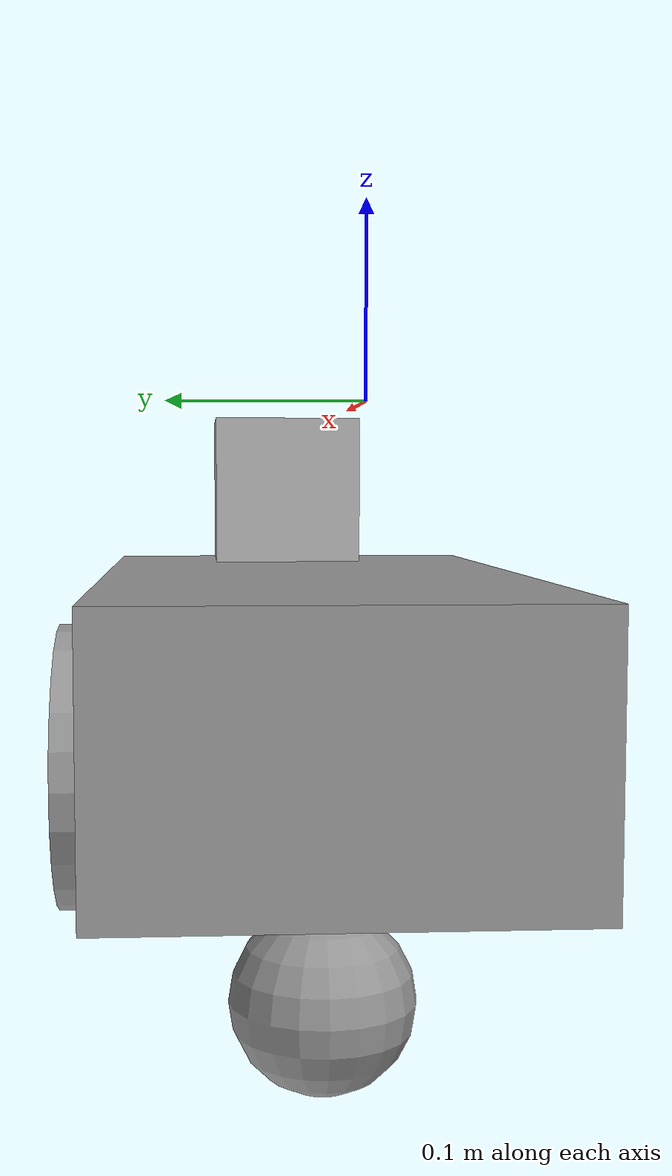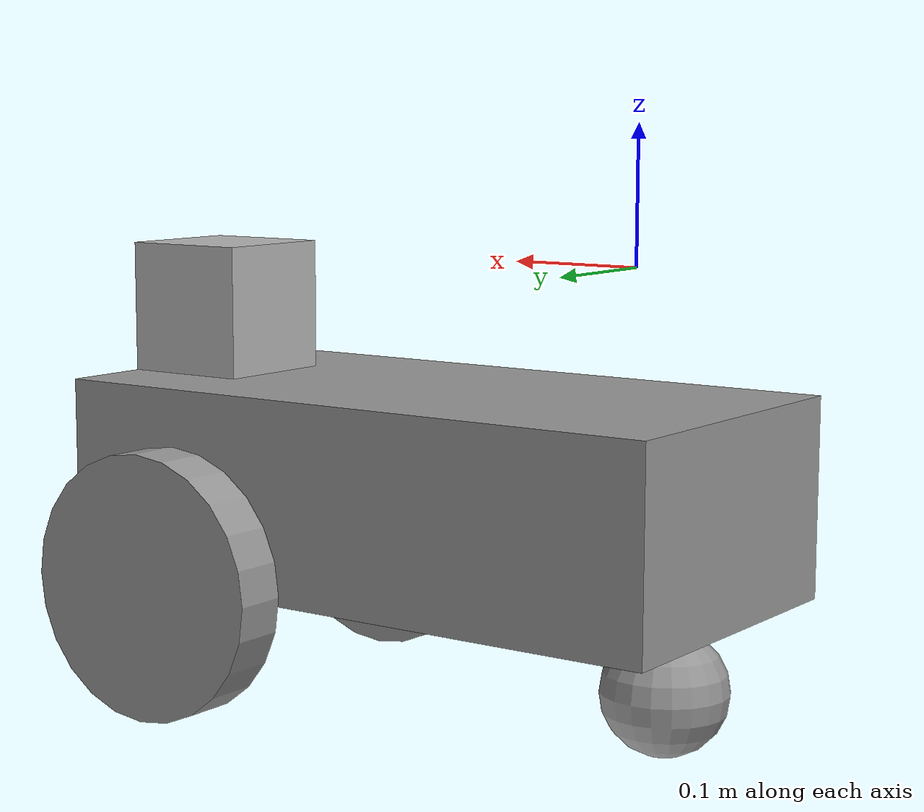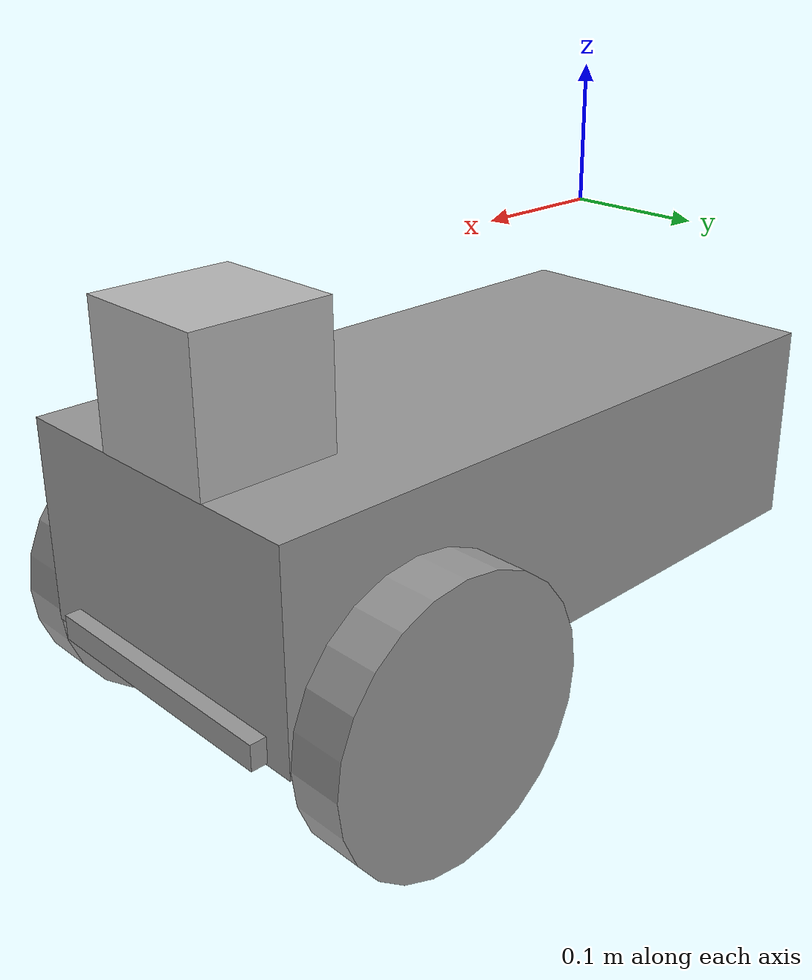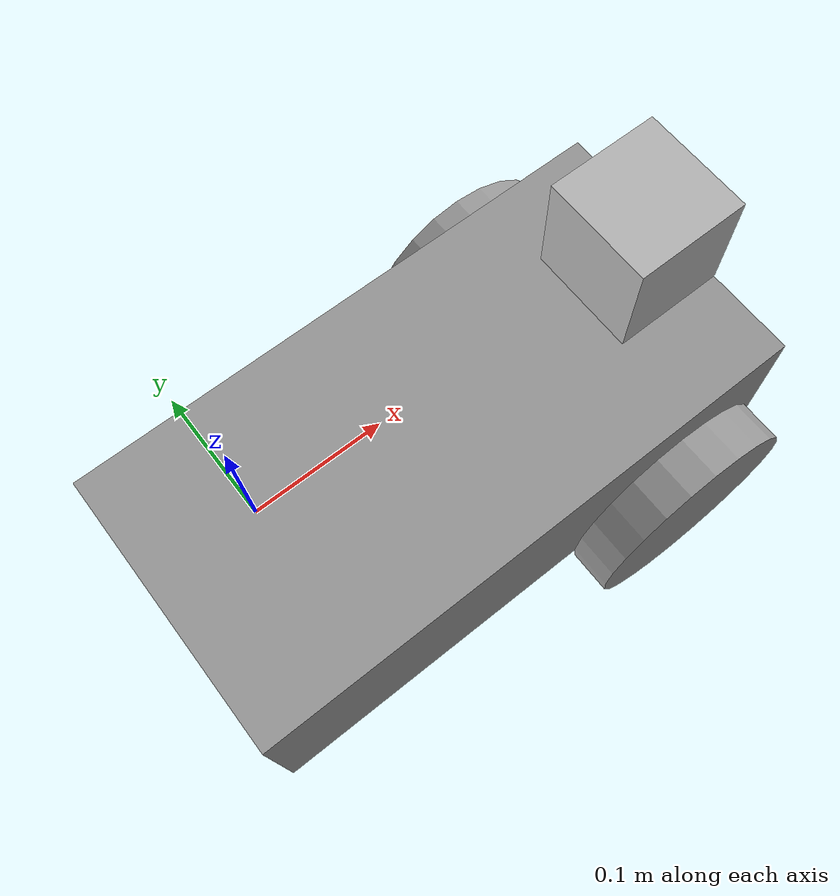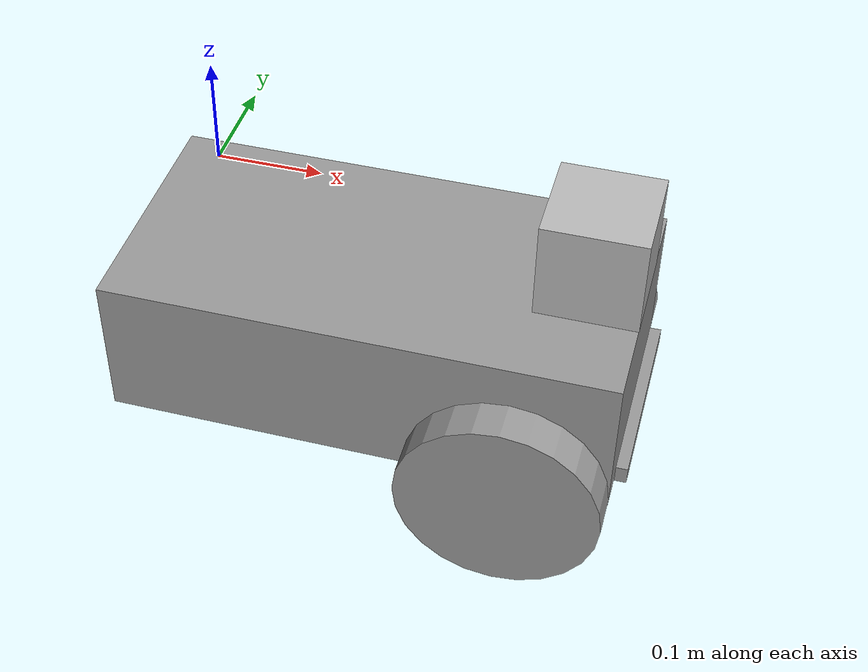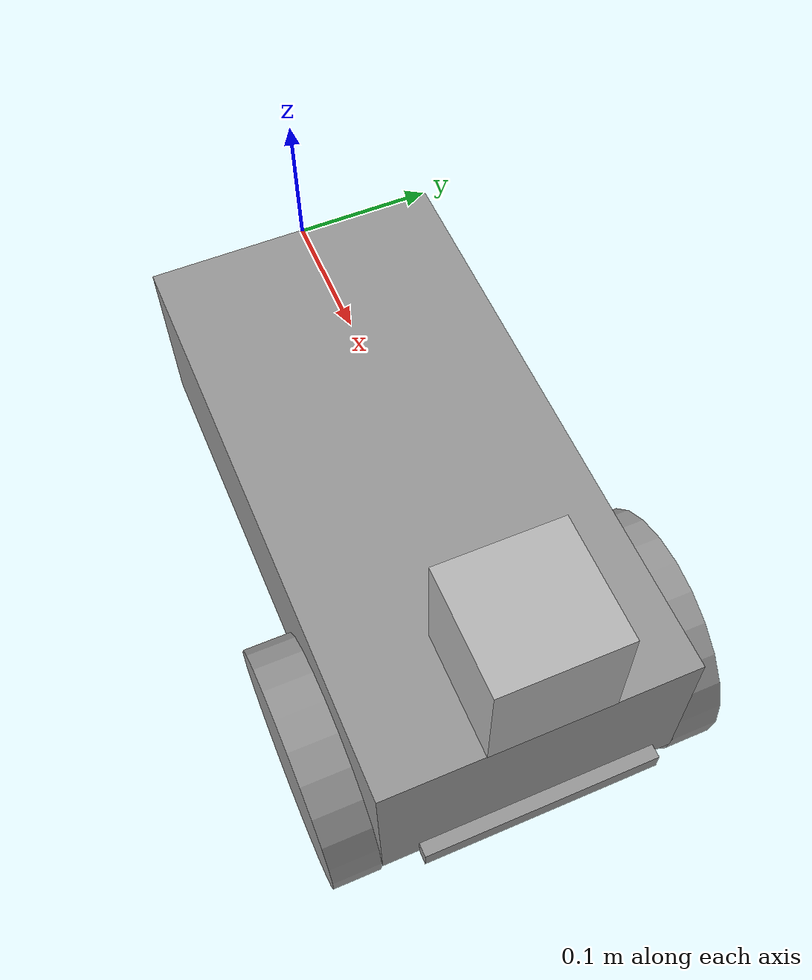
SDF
<?xml version='1.0'?>
<sdf version='1.7'>
  <model name='robot_001'>
    <link name='caster'>
      <inertial>
        <mass>1.0</mass>
        <inertia>
          <ixx>9e-07</ixx>
          <ixy>0</ixy>
          <ixz>0</ixz>
          <iyy>9e-07</iyy>
          <iyz>0</iyz>
          <izz>9e-07</izz>
        </inertia>
        <pose>0 0 0 0 -0 0</pose>
      </inertial>
      <pose>-0.042097 0.024615 -0.291624 0 -0 0</pose>
      <gravity>1</gravity>
      <self_collide>0</self_collide>
      <kinematic>0</kinematic>
      <enable_wind>0</enable_wind>
      <visual name='visual'>
        <pose>0 0 0 0 -0 0</pose>
        <geometry>
          <sphere>
            <radius>0.046</radius>
          </sphere>
        </geometry>
        <material>
          <lighting>1</lighting>
          <script>
            <uri>file://media/materials/scripts/gazebo.material</uri>
            <name>Gazebo/Grey</name>
          </script>
          <shader type='pixel'>
            <normal_map>__default__</normal_map>
          </shader>
          <ambient>0.3 0.3 0.3 1</ambient>
          <diffuse>0.7 0.7 0.7 1</diffuse>
          <specular>0.01 0.01 0.01 1</specular>
          <emissive>0 0 0 1</emissive>
        </material>
        <transparency>0</transparency>
        <cast_shadows>1</cast_shadows>
      </visual>
      <collision name='collision'>
        <laser_retro>0</laser_retro>
        <max_contacts>10</max_contacts>
        <pose>0 0 0 0 -0 0</pose>
        <geometry>
          <sphere>
            <radius>0.046</radius>
          </sphere>
        </geometry>
        <surface>
          <friction>
            <ode>
              <mu>1</mu>
              <mu2>1</mu2>
              <fdir1>0 0 0</fdir1>
              <slip1>0</slip1>
              <slip2>0</slip2>
            </ode>
            <torsional>
              <coefficient>1</coefficient>
              <patch_radius>0</patch_radius>
              <surface_radius>0</surface_radius>
              <use_patch_radius>1</use_patch_radius>
              <ode>
                <slip>0</slip>
              </ode>
            </torsional>
          </friction>
          <bounce>
            <restitution_coefficient>0</restitution_coefficient>
            <threshold>1e+06</threshold>
          </bounce>
          <contact>
            <collide_without_contact>0</collide_without_contact>
            <collide_without_contact_bitmask>1</collide_without_contact_bitmask>
            <collide_bitmask>1</collide_bitmask>
            <ode>
              <soft_cfm>0</soft_cfm>
              <soft_erp>0.2</soft_erp>
              <kp>1e+13</kp>
              <kd>1</kd>
              <max_vel>0.01</max_vel>
              <min_depth>0</min_depth>
            </ode>
            <bullet>
              <split_impulse>1</split_impulse>
              <split_impulse_penetration_threshold>-0.01</split_impulse_penetration_threshold>
              <soft_cfm>0</soft_cfm>
              <soft_erp>0.2</soft_erp>
              <kp>1e+13</kp>
              <kd>1</kd>
            </bullet>
          </contact>
        </surface>
      </collision>
    </link>
    <link name='chassis'>
      <inertial>
        <mass>1.1509</mass>
        <inertia>
          <ixx>0.15021</ixx>
          <ixy>0</ixy>
          <ixz>0</ixz>
          <iyy>0.279296</iyy>
          <iyz>0</iyz>
          <izz>0.286024</izz>
        </inertia>
        <pose>0 0 0 0 -0 0</pose>
      </inertial>
      <pose>0.159913 0.014865 -0.17 0 -0 0</pose>
      <gravity>1</gravity>
      <self_collide>0</self_collide>
      <kinematic>0</kinematic>
      <enable_wind>0</enable_wind>
      <visual name='visual'>
        <pose>0 0 0 0 -0 0</pose>
        <geometry>
          <box>
            <size>0.5 0.25 0.15</size>
          </box>
        </geometry>
        <material>
          <lighting>1</lighting>
          <script>
            <uri>file://media/materials/scripts/gazebo.material</uri>
            <name>Gazebo/Grey</name>
          </script>
          <shader type='pixel'>
            <normal_map>__default__</normal_map>
          </shader>
          <ambient>0.3 0.3 0.3 1</ambient>
          <diffuse>0.7 0.7 0.7 1</diffuse>
          <specular>0.01 0.01 0.01 1</specular>
          <emissive>0 0 0 1</emissive>
        </material>
        <transparency>0</transparency>
        <cast_shadows>1</cast_shadows>
      </visual>
      <collision name='collision'>
        <laser_retro>0</laser_retro>
        <max_contacts>10</max_contacts>
        <pose>0 0 0 0 -0 0</pose>
        <geometry>
          <box>
            <size>0.5 0.25 0.15</size>
          </box>
        </geometry>
        <surface>
          <friction>
            <ode>
              <mu>1</mu>
              <mu2>1</mu2>
              <fdir1>0 0 0</fdir1>
              <slip1>0</slip1>
              <slip2>0</slip2>
            </ode>
            <torsional>
              <coefficient>1</coefficient>
              <patch_radius>0</patch_radius>
              <surface_radius>0</surface_radius>
              <use_patch_radius>1</use_patch_radius>
              <ode>
                <slip>0</slip>
              </ode>
            </torsional>
          </friction>
          <bounce>
            <restitution_coefficient>0</restitution_coefficient>
            <threshold>1e+06</threshold>
          </bounce>
          <contact>
            <collide_without_contact>0</collide_without_contact>
            <collide_without_contact_bitmask>1</collide_without_contact_bitmask>
            <collide_bitmask>1</collide_bitmask>
            <ode>
              <soft_cfm>0</soft_cfm>
              <soft_erp>0.2</soft_erp>
              <kp>1e+13</kp>
              <kd>1</kd>
              <max_vel>0.01</max_vel>
              <min_depth>0</min_depth>
            </ode>
            <bullet>
              <split_impulse>1</split_impulse>
              <split_impulse_penetration_threshold>-0.01</split_impulse_penetration_threshold>
              <soft_cfm>0</soft_cfm>
              <soft_erp>0.2</soft_erp>
              <kp>1e+13</kp>
              <kd>1</kd>
            </bullet>
          </contact>
        </surface>
      </collision>
    </link>
    <link name='bumper'>
      <inertial>
        <mass>4.23654e-05</mass>
        <inertia>
          <ixx>1.42262e-07</ixx>
          <ixy>0</ixy>
          <ixz>0</ixz>
          <iyy>1.65068e-09</iyy>
          <iyz>0</iyz>
          <izz>1.41559e-07</izz>
        </inertia>
        <pose>0 0 0 0 -0 0</pose>
      </inertial>
      <pose>0.416264 0.020149 -0.233594 2.6e-05 0.000118 0</pose>
      <visual name='visual'>
        <pose>0 0 0 0 -0 0</pose>
        <geometry>
          <box>
            <size>0.011586 0.199906 0.018257</size>
          </box>
        </geometry>
        <material>
          <lighting>1</lighting>
          <script>
            <uri>file://media/materials/scripts/gazebo.material</uri>
            <name>Gazebo/Grey</name>
          </script>
          <shader type='pixel'/>
          <emissive>0 0 0 1</emissive>
        </material>
        <transparency>0</transparency>
        <cast_shadows>1</cast_shadows>
      </visual>
      <collision name='collision'>
        <laser_retro>0</laser_retro>
        <max_contacts>10</max_contacts>
        <pose>0 0 0 0 -0 0</pose>
        <geometry>
          <box>
            <size>0.011586 0.199906 0.018257</size>
          </box>
        </geometry>
        <surface>
          <friction>
            <ode>
              <mu>1</mu>
              <mu2>1</mu2>
              <fdir1>0 0 0</fdir1>
              <slip1>0</slip1>
              <slip2>0</slip2>
            </ode>
            <torsional>
              <coefficient>1</coefficient>
              <patch_radius>0</patch_radius>
              <surface_radius>0</surface_radius>
              <use_patch_radius>1</use_patch_radius>
              <ode>
                <slip>0</slip>
              </ode>
            </torsional>
          </friction>
          <bounce>
            <restitution_coefficient>0</restitution_coefficient>
            <threshold>1e+06</threshold>
          </bounce>
          <contact>
            <collide_without_contact>0</collide_without_contact>
            <collide_without_contact_bitmask>1</collide_without_contact_bitmask>
            <collide_bitmask>1</collide_bitmask>
            <ode>
              <soft_cfm>0</soft_cfm>
              <soft_erp>0.2</soft_erp>
              <kp>1e+13</kp>
              <kd>1</kd>
              <max_vel>0.01</max_vel>
              <min_depth>0</min_depth>
            </ode>
            <bullet>
              <split_impulse>1</split_impulse>
              <split_impulse_penetration_threshold>-0.01</split_impulse_penetration_threshold>
              <soft_cfm>0</soft_cfm>
              <soft_erp>0.2</soft_erp>
              <kp>1e+13</kp>
              <kd>1</kd>
            </bullet>
          </contact>
        </surface>
      </collision>
    </link>
    <link name='wheel_left'>
      <inertial>
        <mass>0.5</mass>
        <inertia>
          <ixx>0.00044912</ixx>
          <ixy>0</ixy>
          <ixz>0</ixz>
          <iyy>0.00044912</iyy>
          <iyz>0</iyz>
          <izz>0.00087145</izz>
        </inertia>
        <pose>0 0 0 0 -0 0</pose>
      </inertial>
      <pose>0.310002 0.160674 -0.237998 -1.5708 -0 3e-06</pose>
      <gravity>1</gravity>
      <self_collide>0</self_collide>
      <kinematic>0</kinematic>
      <enable_wind>0</enable_wind>
      <visual name='visual'>
        <pose>0 0 0 0 -0 0</pose>
        <geometry>
          <cylinder>
            <radius>0.1</radius>
            <length>0.04</length>
          </cylinder>
        </geometry>
        <material>
          <lighting>1</lighting>
          <script>
            <uri>file://media/materials/scripts/gazebo.material</uri>
            <name>Gazebo/Grey</name>
          </script>
          <shader type='pixel'>
            <normal_map>__default__</normal_map>
          </shader>
          <ambient>0.3 0.3 0.3 1</ambient>
          <diffuse>0.7 0.7 0.7 1</diffuse>
          <specular>0.01 0.01 0.01 1</specular>
          <emissive>0 0 0 1</emissive>
        </material>
        <transparency>0</transparency>
        <cast_shadows>1</cast_shadows>
      </visual>
      <collision name='collision'>
        <laser_retro>0</laser_retro>
        <max_contacts>10</max_contacts>
        <pose>0 0 0 0 -0 0</pose>
        <geometry>
          <cylinder>
            <radius>0.1</radius>
            <length>0.04</length>
          </cylinder>
        </geometry>
        <surface>
          <friction>
            <ode>
              <mu>1</mu>
              <mu2>1</mu2>
              <fdir1>0 0 0</fdir1>
              <slip1>0</slip1>
              <slip2>0</slip2>
            </ode>
            <torsional>
              <coefficient>1</coefficient>
              <patch_radius>0</patch_radius>
              <surface_radius>0</surface_radius>
              <use_patch_radius>1</use_patch_radius>
              <ode>
                <slip>0</slip>
              </ode>
            </torsional>
          </friction>
          <bounce>
            <restitution_coefficient>0</restitution_coefficient>
            <threshold>1e+06</threshold>
          </bounce>
          <contact>
            <collide_without_contact>0</collide_without_contact>
            <collide_without_contact_bitmask>1</collide_without_contact_bitmask>
            <collide_bitmask>1</collide_bitmask>
            <ode>
              <soft_cfm>0</soft_cfm>
              <soft_erp>0.2</soft_erp>
              <kp>1e+13</kp>
              <kd>1</kd>
              <max_vel>0.01</max_vel>
              <min_depth>0</min_depth>
            </ode>
            <bullet>
              <split_impulse>1</split_impulse>
              <split_impulse_penetration_threshold>-0.01</split_impulse_penetration_threshold>
              <soft_cfm>0</soft_cfm>
              <soft_erp>0.2</soft_erp>
              <kp>1e+13</kp>
              <kd>1</kd>
            </bullet>
          </contact>
        </surface>
      </collision>
    </link>
    <link name='wheel_right'>
      <inertial>
        <mass>0.5</mass>
        <inertia>
          <ixx>9.75e-06</ixx>
          <ixy>0</ixy>
          <ixz>0</ixz>
          <iyy>9.75e-06</iyy>
          <iyz>0</iyz>
          <izz>1.7e-05</izz>
        </inertia>
        <pose>0 0 0 0 -0 0</pose>
      </inertial>
      <pose>0.31 -0.130622 -0.238 -1.5708 -0 3e-06</pose>
      <gravity>1</gravity>
      <self_collide>0</self_collide>
      <kinematic>0</kinematic>
      <enable_wind>0</enable_wind>
      <visual name='visual'>
        <pose>0 0 0 0 -0 0</pose>
        <geometry>
          <cylinder>
            <radius>0.1</radius>
            <length>0.04</length>
          </cylinder>
        </geometry>
        <material>
          <lighting>1</lighting>
          <script>
            <uri>file://media/materials/scripts/gazebo.material</uri>
            <name>Gazebo/Grey</name>
          </script>
          <shader type='pixel'>
            <normal_map>__default__</normal_map>
          </shader>
          <ambient>0.3 0.3 0.3 1</ambient>
          <diffuse>0.7 0.7 0.7 1</diffuse>
          <specular>0.01 0.01 0.01 1</specular>
          <emissive>0 0 0 1</emissive>
        </material>
        <transparency>0</transparency>
        <cast_shadows>1</cast_shadows>
      </visual>
      <collision name='collision'>
        <laser_retro>0</laser_retro>
        <max_contacts>10</max_contacts>
        <pose>0 0 0 0 -0 0</pose>
        <geometry>
          <cylinder>
            <radius>0.1</radius>
            <length>0.04</length>
          </cylinder>
        </geometry>
        <surface>
          <friction>
            <ode>
              <mu>1</mu>
              <mu2>1</mu2>
              <fdir1>0 0 0</fdir1>
              <slip1>0</slip1>
              <slip2>0</slip2>
            </ode>
            <torsional>
              <coefficient>1</coefficient>
              <patch_radius>0</patch_radius>
              <surface_radius>0</surface_radius>
              <use_patch_radius>1</use_patch_radius>
              <ode>
                <slip>0</slip>
              </ode>
            </torsional>
          </friction>
          <bounce>
            <restitution_coefficient>0</restitution_coefficient>
            <threshold>1e+06</threshold>
          </bounce>
          <contact>
            <collide_without_contact>0</collide_without_contact>
            <collide_without_contact_bitmask>1</collide_without_contact_bitmask>
            <collide_bitmask>1</collide_bitmask>
            <ode>
              <soft_cfm>0</soft_cfm>
              <soft_erp>0.2</soft_erp>
              <kp>1e+13</kp>
              <kd>1</kd>
              <max_vel>0.01</max_vel>
              <min_depth>0</min_depth>
            </ode>
            <bullet>
              <split_impulse>1</split_impulse>
              <split_impulse_penetration_threshold>-0.01</split_impulse_penetration_threshold>
              <soft_cfm>0</soft_cfm>
              <soft_erp>0.2</soft_erp>
              <kp>1e+13</kp>
              <kd>1</kd>
            </bullet>
          </contact>
        </surface>
      </collision>
    </link>
    <model name='camera'>
      <pose>0.360322 0.021131 -0.044885 0 -0 0</pose>
      <link name='link'>
        <inertial>
          <mass>0.05</mass>
          <inertia>
            <ixx>0.000166667</ixx>
            <iyy>0.000166667</iyy>
            <izz>0.000166667</izz>
            <ixy>0</ixy>
            <ixz>0</ixz>
            <iyz>0</iyz>
          </inertia>
          <pose>0 0 0 0 -0 0</pose>
        </inertial>
        <collision name='collision'>
          <geometry>
            <box>
              <size>0.1 0.1 0.1</size>
            </box>
          </geometry>
          <max_contacts>10</max_contacts>
          <surface>
            <contact>
              <ode/>
            </contact>
            <bounce/>
            <friction>
              <torsional>
                <ode/>
              </torsional>
              <ode/>
            </friction>
          </surface>
        </collision>
        <visual name='visual'>
          <geometry>
            <box>
              <size>0.1 0.1 0.1</size>
            </box>
          </geometry>
        </visual>
        <sensor name='camera' type='camera'>
          <camera>
            <horizontal_fov>1.5</horizontal_fov>
            <image>
              <width>400</width>
              <height>400</height>
            </image>
            <clip>
              <near>0.01</near>
              <far>100</far>
            </clip>
          </camera>
          <always_on>1</always_on>
          <update_rate>30</update_rate>
          <visualize>1</visualize>
          <plugin name="camera_controller" filename="libgazebo_ros_camera.so">
            <alwaysOn>true</alwaysOn>
            <updateRate>0.0</updateRate>
            <cameraName>forager/camera</cameraName>
            <imageTopicName>image_raw</imageTopicName>
            <cameraInfoTopicName>camera_info</cameraInfoTopicName>
            <frameName>camera_link</frameName>
            <hackBaseline>0.07</hackBaseline>
            <distortionK1>0.0</distortionK1>
            <distortionK2>0.0</distortionK2>
            <distortionK3>0.0</distortionK3>
            <distortionT1>0.0</distortionT1>
            <distortionT2>0.0</distortionT2>
          </plugin>
        </sensor>
        <self_collide>0</self_collide>
        <enable_wind>0</enable_wind>
        <kinematic>0</kinematic>
      </link>
    </model>
    <joint name='wheel_right_joint' type='revolute'>
      <parent>chassis</parent>
      <child>wheel_right</child>
      <pose>0 0 0 0 -0 0</pose>
      <axis>
        <xyz>0 0 1</xyz>
        <limit>
          <lower>-1.79769e+308</lower>
          <upper>1.79769e+308</upper>
          <effort>-1</effort>
          <velocity>-1</velocity>
        </limit>
        <dynamics>
          <spring_reference>0</spring_reference>
          <spring_stiffness>0</spring_stiffness>
          <damping>0</damping>
        </dynamics>
      </axis>
      <physics>
        <ode>
          <limit>
            <cfm>0</cfm>
            <erp>0.2</erp>
          </limit>
          <suspension>
            <cfm>0</cfm>
            <erp>0.2</erp>
          </suspension>
        </ode>
      </physics>
    </joint>
    <joint name='wheel_left_joint' type='revolute'>
      <parent>chassis</parent>
      <child>wheel_left</child>
      <pose>0 0 0 0 -0 0</pose>
      <axis>
        <xyz>0 0 1</xyz>
        <limit>
          <lower>-1.79769e+308</lower>
          <upper>1.79769e+308</upper>
          <effort>-1</effort>
          <velocity>-1</velocity>
        </limit>
        <dynamics>
          <spring_reference>0</spring_reference>
          <spring_stiffness>0</spring_stiffness>
          <damping>0</damping>
        </dynamics>
      </axis>
      <physics>
        <ode>
          <limit>
            <cfm>0</cfm>
            <erp>0.2</erp>
          </limit>
          <suspension>
            <cfm>0</cfm>
            <erp>0.2</erp>
          </suspension>
        </ode>
      </physics>
    </joint>
    <joint name='caster_joint' type='ball'>
      <parent>chassis</parent>
      <child>caster</child>
      <pose>0 0 0 0 -0 0</pose>
      <physics>
        <ode>
          <limit>
            <cfm>0</cfm>
            <erp>0.2</erp>
          </limit>
          <suspension>
            <cfm>0</cfm>
            <erp>0.2</erp>
          </suspension>
        </ode>
      </physics>
    </joint>
    <joint name='camera_joint' type='fixed'>
      <parent>chassis</parent>
      <child>camera::link</child>
      <pose>0 0 0 0 -0 0</pose>
      <physics>
        <ode>
          <limit>
            <cfm>0</cfm>
            <erp>0.2</erp>
          </limit>
          <suspension>
            <cfm>0</cfm>
            <erp>0.2</erp>
          </suspension>
        </ode>
      </physics>
    </joint>
    <joint name='bumper_joint' type='fixed'>
      <parent>chassis</parent>
      <child>bumper</child>
      <pose>0 0 0 0 -0 0</pose>
      <physics>
        <ode>
          <limit>
            <cfm>0</cfm>
            <erp>0.2</erp>
          </limit>
          <suspension>
            <cfm>0</cfm>
            <erp>0.2</erp>
          </suspension>
        </ode>
      </physics>
    </joint>
    <static>0</static>
    <allow_auto_disable>1</allow_auto_disable>
    <plugin name='differential_drive_controller' filename='libgazebo_ros_diff_drive.so'>
      <updateRate>100</updateRate>
      <leftJoint>wheel_left_joint</leftJoint>
      <rightJoint>wheel_right_joint</rightJoint>
      <wheelSeparation>0.29</wheelSeparation>
      <wheelDiameter>0.2</wheelDiameter>
      <wheelAcceleration>0.8</wheelAcceleration>
      <wheelTorque>10</wheelTorque>
      <commandTopic>/forager/cmd_vel</commandTopic>
      <odometryTopic>odom</odometryTopic>
      <odometryFrame>odom</odometryFrame>
      <robotBaseFrame>base_footprint</robotBaseFrame>
      <odometrySource>1</odometrySource>
      <publishWheelTF>1</publishWheelTF>
      <publishOdom>1</publishOdom>
      <publishWheelJointState>1</publishWheelJointState>
      <legacyMode>0</legacyMode>
    </plugin>
  </model>
</sdf>
